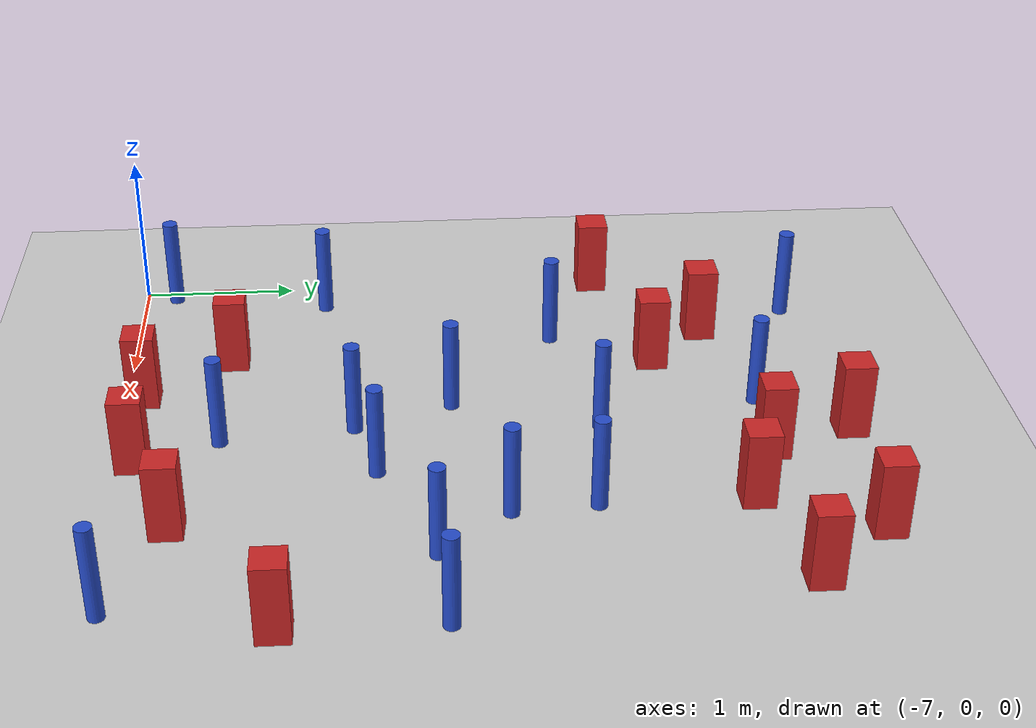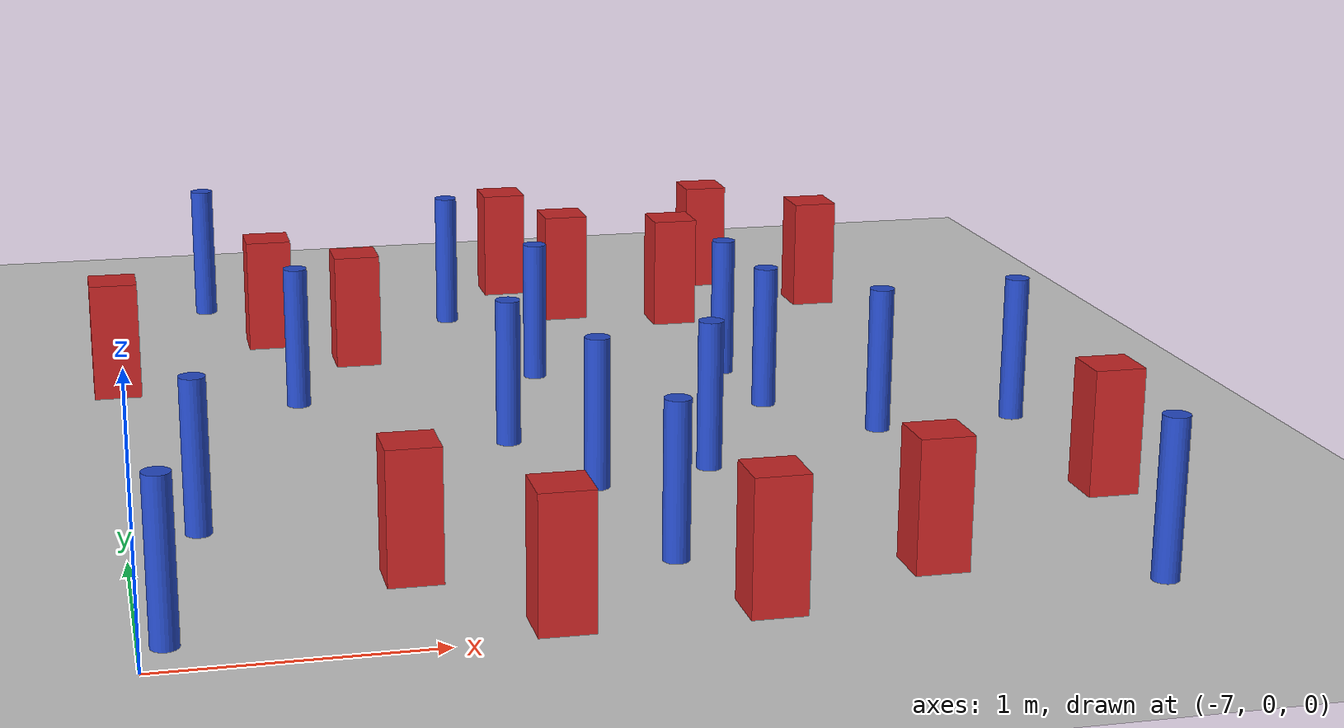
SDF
<sdf version="1.6">
 <world name="default">
  <model name="ground_plane">
   <static>1</static>
   <link name="link">
    <collision name="collision">
     <geometry><plane><normal>0 0 1</normal><size>100 100</size></plane></geometry>
     <surface><friction><ode><mu>100</mu><mu2>50</mu2></ode></friction></surface>
    </collision>
    <visual name="visual">
     <cast_shadows>0</cast_shadows>
     <geometry><plane><normal>0 0 1</normal><size>100 100</size></plane></geometry>
     <material>
      <ambient>1.0 1.0 1.0 1.0</ambient>
      <diffuse>0.8 0.8 0.8 1.0</diffuse>
      <specular>0.01 0.01 0.01 1.000000</specular>
     </material>
    </visual>
   </link>
  </model>
  <model name="square_post_obstacle5">
   <static>true</static>
   <pose>-3.9854556067 4.46820223153 -6.11067671241e-07 -5.50515727128e-06 -8.79689657224e-07 2.37013304536e-05</pose>
   <link name="link">
    <pose>0 0 0.25 0 -0 0</pose>
    <inertial>
     <mass>100</mass>
     <inertia>
      <ixx>0.166667</ixx>
      <ixy>0</ixy>
      <ixz>0</ixz>
      <iyy>0.166667</iyy>
      <iyz>0</iyz>
      <izz>0.166667</izz>
     </inertia>
    </inertial>
    <collision name="collision"><geometry><box><size>.2 .2 .5</size></box></geometry></collision>
    <visual name="visual">
     <geometry><box><size>.2 .2 .5</size></box></geometry>
     <material>
      <script><name>Gazebo/Red</name><uri>file://media/materials/scripts/gazebo.material</uri></script>
     </material>
    </visual>
   </link>
  </model>
  <model name="square_post_obstacle21">
   <static>true</static>
   <pose>-4.89767449202 0.111727149782 -6.11067671241e-07 -5.50515727128e-06 -8.79689657224e-07 2.37013304536e-05</pose>
   <link name="link">
    <pose>0 0 0.25 0 -0 0</pose>
    <inertial>
     <mass>100</mass>
     <inertia>
      <ixx>0.166667</ixx>
      <ixy>0</ixy>
      <ixz>0</ixz>
      <iyy>0.166667</iyy>
      <iyz>0</iyz>
      <izz>0.166667</izz>
     </inertia>
    </inertial>
    <collision name="collision"><geometry><box><size>.2 .2 .5</size></box></geometry></collision>
    <visual name="visual">
     <geometry><box><size>.2 .2 .5</size></box></geometry>
     <material>
      <script><name>Gazebo/Red</name><uri>file://media/materials/scripts/gazebo.material</uri></script>
     </material>
    </visual>
   </link>
  </model>
  <model name="square_post_obstacle25">
   <static>true</static>
   <pose>-6.24185374279 3.75734266402 -6.11067671241e-07 -5.50515727128e-06 -8.79689657224e-07 2.37013304536e-05</pose>
   <link name="link">
    <pose>0 0 0.25 0 -0 0</pose>
    <inertial>
     <mass>100</mass>
     <inertia>
      <ixx>0.166667</ixx>
      <ixy>0</ixy>
      <ixz>0</ixz>
      <iyy>0.166667</iyy>
      <iyz>0</iyz>
      <izz>0.166667</izz>
     </inertia>
    </inertial>
    <collision name="collision"><geometry><box><size>.2 .2 .5</size></box></geometry></collision>
    <visual name="visual">
     <geometry><box><size>.2 .2 .5</size></box></geometry>
     <material>
      <script><name>Gazebo/Red</name><uri>file://media/materials/scripts/gazebo.material</uri></script>
     </material>
    </visual>
   </link>
  </model>
  <model name="pole_obstacle61">
   <static>true</static>
   <pose>-5.20028227913 1.44340238059 -9.47619616065e-06 5.49618799738e-07 2.36310414071e-07 -1.55090534796e-07</pose>
   <link name="link">
    <pose>0 0 0.3 0 -0 0</pose>
    <inertial>
     <mass>1</mass>
     <inertia><ixx>0.145833</ixx><ixy>0</ixy><ixz>0</ixz><iyy>0.145833</iyy><iyz>0</iyz><izz>0.125</izz></inertia>
    </inertial>
    <collision name="collision">
     <geometry><cylinder><radius>0.05</radius><length>.6</length></cylinder></geometry>
    </collision>
    <visual name="visual">
     <geometry><cylinder><radius>0.05</radius><length>.6</length></cylinder></geometry>
     <material>
      <script><name>Gazebo/Blue</name><uri>file://media/materials/scripts/gazebo.material</uri></script>
     </material>
    </visual>
   </link>
  </model>
  <model name="pole_obstacle67">
   <static>true</static>
   <pose>-6.21090369616 2.75168642242 -9.47619616065e-06 5.49618799738e-07 2.36310414051e-07 -1.55090534805e-07</pose>
   <link name="link">
    <pose>0 0 0.3 0 -0 0</pose>
    <inertial>
     <mass>1</mass>
     <inertia><ixx>0.145833</ixx><ixy>0</ixy><ixz>0</ixz><iyy>0.145833</iyy><iyz>0</iyz><izz>0.125</izz></inertia>
    </inertial>
    <collision name="collision">
     <geometry><cylinder><radius>0.05</radius><length>.6</length></cylinder></geometry>
    </collision>
    <visual name="visual">
     <geometry><cylinder><radius>0.05</radius><length>.6</length></cylinder></geometry>
     <material>
      <script><name>Gazebo/Blue</name><uri>file://media/materials/scripts/gazebo.material</uri></script>
     </material>
    </visual>
   </link>
  </model>
  <model name="square_post_obstacle68">
   <static>true</static>
   <pose>-5.88368267943 3.38501373455 -6.11067671241e-07 -5.50515727128e-06 -8.79689657224e-07 2.37013304536e-05</pose>
   <link name="link">
    <pose>0 0 0.25 0 -0 0</pose>
    <inertial>
     <mass>100</mass>
     <inertia>
      <ixx>0.166667</ixx>
      <ixy>0</ixy>
      <ixz>0</ixz>
      <iyy>0.166667</iyy>
      <iyz>0</iyz>
      <izz>0.166667</izz>
     </inertia>
    </inertial>
    <collision name="collision"><geometry><box><size>.2 .2 .5</size></box></geometry></collision>
    <visual name="visual">
     <geometry><box><size>.2 .2 .5</size></box></geometry>
     <material>
      <script><name>Gazebo/Red</name><uri>file://media/materials/scripts/gazebo.material</uri></script>
     </material>
    </visual>
   </link>
  </model>
  <model name="pole_obstacle89">
   <static>true</static>
   <pose>-3.49032137935 0.0715964662466 -9.47619616065e-06 5.49618799737e-07 2.36310414028e-07 -1.55090534822e-07</pose>
   <link name="link">
    <pose>0 0 0.3 0 -0 0</pose>
    <inertial>
     <mass>1</mass>
     <inertia><ixx>0.145833</ixx><ixy>0</ixy><ixz>0</ixz><iyy>0.145833</iyy><iyz>0</iyz><izz>0.125</izz></inertia>
    </inertial>
    <collision name="collision">
     <geometry><cylinder><radius>0.05</radius><length>.6</length></cylinder></geometry>
    </collision>
    <visual name="visual">
     <geometry><cylinder><radius>0.05</radius><length>.6</length></cylinder></geometry>
     <material>
      <script><name>Gazebo/Blue</name><uri>file://media/materials/scripts/gazebo.material</uri></script>
     </material>
    </visual>
   </link>
  </model>
  <model name="square_post_obstacle86">
   <static>true</static>
   <pose>-6.96056548195 3.10820030166 -6.11067671241e-07 -5.50515727128e-06 -8.79689657224e-07 2.37013304536e-05</pose>
   <link name="link">
    <pose>0 0 0.25 0 -0 0</pose>
    <inertial>
     <mass>100</mass>
     <inertia>
      <ixx>0.166667</ixx>
      <ixy>0</ixy>
      <ixz>0</ixz>
      <iyy>0.166667</iyy>
      <iyz>0</iyz>
      <izz>0.166667</izz>
     </inertia>
    </inertial>
    <collision name="collision"><geometry><box><size>.2 .2 .5</size></box></geometry></collision>
    <visual name="visual">
     <geometry><box><size>.2 .2 .5</size></box></geometry>
     <material>
      <script><name>Gazebo/Red</name><uri>file://media/materials/scripts/gazebo.material</uri></script>
     </material>
    </visual>
   </link>
  </model>
  <model name="pole_obstacle97">
   <static>true</static>
   <pose>-6.73394681827 1.24381692508 -9.47619616065e-06 5.49618799738e-07 2.36310414071e-07 -1.55090534796e-07</pose>
   <link name="link">
    <pose>0 0 0.3 0 -0 0</pose>
    <inertial>
     <mass>1</mass>
     <inertia><ixx>0.145833</ixx><ixy>0</ixy><ixz>0</ixz><iyy>0.145833</iyy><iyz>0</iyz><izz>0.125</izz></inertia>
    </inertial>
    <collision name="collision">
     <geometry><cylinder><radius>0.05</radius><length>.6</length></cylinder></geometry>
    </collision>
    <visual name="visual">
     <geometry><cylinder><radius>0.05</radius><length>.6</length></cylinder></geometry>
     <material>
      <script><name>Gazebo/Blue</name><uri>file://media/materials/scripts/gazebo.material</uri></script>
     </material>
    </visual>
   </link>
  </model>
  <model name="square_post_obstacle92">
   <static>true</static>
   <pose>-3.55744458222 3.99997113632 -6.11067671241e-07 -5.50515727128e-06 -8.79689657224e-07 2.37013304536e-05</pose>
   <link name="link">
    <pose>0 0 0.25 0 -0 0</pose>
    <inertial>
     <mass>100</mass>
     <inertia>
      <ixx>0.166667</ixx>
      <ixy>0</ixy>
      <ixz>0</ixz>
      <iyy>0.166667</iyy>
      <iyz>0</iyz>
      <izz>0.166667</izz>
     </inertia>
    </inertial>
    <collision name="collision"><geometry><box><size>.2 .2 .5</size></box></geometry></collision>
    <visual name="visual">
     <geometry><box><size>.2 .2 .5</size></box></geometry>
     <material>
      <script><name>Gazebo/Red</name><uri>file://media/materials/scripts/gazebo.material</uri></script>
     </material>
    </visual>
   </link>
  </model>
  <model name="pole_obstacle101">
   <static>true</static>
   <pose>-5.4318687389 2.05385874134 -9.47619616065e-06 5.49618799738e-07 2.36310414051e-07 -1.55090534805e-07</pose>
   <link name="link">
    <pose>0 0 0.3 0 -0 0</pose>
    <inertial>
     <mass>1</mass>
     <inertia><ixx>0.145833</ixx><ixy>0</ixy><ixz>0</ixz><iyy>0.145833</iyy><iyz>0</iyz><izz>0.125</izz></inertia>
    </inertial>
    <collision name="collision">
     <geometry><cylinder><radius>0.05</radius><length>.6</length></cylinder></geometry>
    </collision>
    <visual name="visual">
     <geometry><cylinder><radius>0.05</radius><length>.6</length></cylinder></geometry>
     <material>
      <script><name>Gazebo/Blue</name><uri>file://media/materials/scripts/gazebo.material</uri></script>
     </material>
    </visual>
   </link>
  </model>
  <model name="square_post_obstacle94">
   <static>true</static>
   <pose>-3.30065545411 1.02063417165 -6.11067671241e-07 -5.50515727128e-06 -8.79689657224e-07 2.37013304536e-05</pose>
   <link name="link">
    <pose>0 0 0.25 0 -0 0</pose>
    <inertial>
     <mass>100</mass>
     <inertia>
      <ixx>0.166667</ixx>
      <ixy>0</ixy>
      <ixz>0</ixz>
      <iyy>0.166667</iyy>
      <iyz>0</iyz>
      <izz>0.166667</izz>
     </inertia>
    </inertial>
    <collision name="collision"><geometry><box><size>.2 .2 .5</size></box></geometry></collision>
    <visual name="visual">
     <geometry><box><size>.2 .2 .5</size></box></geometry>
     <material>
      <script><name>Gazebo/Red</name><uri>file://media/materials/scripts/gazebo.material</uri></script>
     </material>
    </visual>
   </link>
  </model>
  <model name="square_post_obstacle102">
   <static>true</static>
   <pose>-6.03837485008 0.652645354887 -6.11067671241e-07 -5.50515727128e-06 -8.79689657224e-07 2.37013304536e-05</pose>
   <link name="link">
    <pose>0 0 0.25 0 -0 0</pose>
    <inertial>
     <mass>100</mass>
     <inertia>
      <ixx>0.166667</ixx>
      <ixy>0</ixy>
      <ixz>0</ixz>
      <iyy>0.166667</iyy>
      <iyz>0</iyz>
      <izz>0.166667</izz>
     </inertia>
    </inertial>
    <collision name="collision"><geometry><box><size>.2 .2 .5</size></box></geometry></collision>
    <visual name="visual">
     <geometry><box><size>.2 .2 .5</size></box></geometry>
     <material>
      <script><name>Gazebo/Red</name><uri>file://media/materials/scripts/gazebo.material</uri></script>
     </material>
    </visual>
   </link>
  </model>
  <model name="pole_obstacle109">
   <static>true</static>
   <pose>-5.37035070303 3.97853645953 -9.47619616065e-06 5.49618799737e-07 2.36310414054e-07 -1.55090534804e-07</pose>
   <link name="link">
    <pose>0 0 0.3 0 -0 0</pose>
    <inertial>
     <mass>1</mass>
     <inertia><ixx>0.145833</ixx><ixy>0</ixy><ixz>0</ixz><iyy>0.145833</iyy><iyz>0</iyz><izz>0.125</izz></inertia>
    </inertial>
    <collision name="collision">
     <geometry><cylinder><radius>0.05</radius><length>.6</length></cylinder></geometry>
    </collision>
    <visual name="visual">
     <geometry><cylinder><radius>0.05</radius><length>.6</length></cylinder></geometry>
     <material>
      <script><name>Gazebo/Blue</name><uri>file://media/materials/scripts/gazebo.material</uri></script>
     </material>
    </visual>
   </link>
  </model>
  <model name="square_post_obstacle105">
   <static>true</static>
   <pose>-4.22629305797 0.378609148374 -6.11067671241e-07 -5.50515727128e-06 -8.79689657224e-07 2.37013304536e-05</pose>
   <link name="link">
    <pose>0 0 0.25 0 -0 0</pose>
    <inertial>
     <mass>100</mass>
     <inertia>
      <ixx>0.166667</ixx>
      <ixy>0</ixy>
      <ixz>0</ixz>
      <iyy>0.166667</iyy>
      <iyz>0</iyz>
      <izz>0.166667</izz>
     </inertia>
    </inertial>
    <collision name="collision"><geometry><box><size>.2 .2 .5</size></box></geometry></collision>
    <visual name="visual">
     <geometry><box><size>.2 .2 .5</size></box></geometry>
     <material>
      <script><name>Gazebo/Red</name><uri>file://media/materials/scripts/gazebo.material</uri></script>
     </material>
    </visual>
   </link>
  </model>
  <model name="square_post_obstacle122">
   <static>true</static>
   <pose>-4.31789929335 3.78424721537 -6.11067671241e-07 -5.50515727128e-06 -8.79689657224e-07 2.37013304536e-05</pose>
   <link name="link">
    <pose>0 0 0.25 0 -0 0</pose>
    <inertial>
     <mass>100</mass>
     <inertia>
      <ixx>0.166667</ixx>
      <ixy>0</ixy>
      <ixz>0</ixz>
      <iyy>0.166667</iyy>
      <iyz>0</iyz>
      <izz>0.166667</izz>
     </inertia>
    </inertial>
    <collision name="collision"><geometry><box><size>.2 .2 .5</size></box></geometry></collision>
    <visual name="visual">
     <geometry><box><size>.2 .2 .5</size></box></geometry>
     <material>
      <script><name>Gazebo/Red</name><uri>file://media/materials/scripts/gazebo.material</uri></script>
     </material>
    </visual>
   </link>
  </model>
  <model name="pole_obstacle127">
   <static>true</static>
   <pose>-5.14111896402 2.9665598119 -9.47619616065e-06 5.49618799738e-07 2.36310414051e-07 -1.55090534805e-07</pose>
   <link name="link">
    <pose>0 0 0.3 0 -0 0</pose>
    <inertial>
     <mass>1</mass>
     <inertia><ixx>0.145833</ixx><ixy>0</ixy><ixz>0</ixz><iyy>0.145833</iyy><iyz>0</iyz><izz>0.125</izz></inertia>
    </inertial>
    <collision name="collision">
     <geometry><cylinder><radius>0.05</radius><length>.6</length></cylinder></geometry>
    </collision>
    <visual name="visual">
     <geometry><cylinder><radius>0.05</radius><length>.6</length></cylinder></geometry>
     <material>
      <script><name>Gazebo/Blue</name><uri>file://media/materials/scripts/gazebo.material</uri></script>
     </material>
    </visual>
   </link>
  </model>
  <model name="pole_obstacle128">
   <static>true</static>
   <pose>-4.31197705896 2.86059861686 -9.47619616065e-06 5.49618799738e-07 2.36310414051e-07 -1.55090534805e-07</pose>
   <link name="link">
    <pose>0 0 0.3 0 -0 0</pose>
    <inertial>
     <mass>1</mass>
     <inertia><ixx>0.145833</ixx><ixy>0</ixy><ixz>0</ixz><iyy>0.145833</iyy><iyz>0</iyz><izz>0.125</izz></inertia>
    </inertial>
    <collision name="collision">
     <geometry><cylinder><radius>0.05</radius><length>.6</length></cylinder></geometry>
    </collision>
    <visual name="visual">
     <geometry><cylinder><radius>0.05</radius><length>.6</length></cylinder></geometry>
     <material>
      <script><name>Gazebo/Blue</name><uri>file://media/materials/scripts/gazebo.material</uri></script>
     </material>
    </visual>
   </link>
  </model>
  <model name="pole_obstacle129">
   <static>true</static>
   <pose>-5.09949745526 0.617684358546 -9.47619616065e-06 5.49618799737e-07 2.36310414061e-07 -1.550905348e-07</pose>
   <link name="link">
    <pose>0 0 0.3 0 -0 0</pose>
    <inertial>
     <mass>1</mass>
     <inertia><ixx>0.145833</ixx><ixy>0</ixy><ixz>0</ixz><iyy>0.145833</iyy><iyz>0</iyz><izz>0.125</izz></inertia>
    </inertial>
    <collision name="collision">
     <geometry><cylinder><radius>0.05</radius><length>.6</length></cylinder></geometry>
    </collision>
    <visual name="visual">
     <geometry><cylinder><radius>0.05</radius><length>.6</length></cylinder></geometry>
     <material>
      <script><name>Gazebo/Blue</name><uri>file://media/materials/scripts/gazebo.material</uri></script>
     </material>
    </visual>
   </link>
  </model>
  <model name="pole_obstacle148">
   <static>true</static>
   <pose>-6.91130225763 0.203133801507 -9.47619616065e-06 5.49618799737e-07 2.36310414071e-07 -1.55090534796e-07</pose>
   <link name="link">
    <pose>0 0 0.3 0 -0 0</pose>
    <inertial>
     <mass>1</mass>
     <inertia><ixx>0.145833</ixx><ixy>0</ixy><ixz>0</ixz><iyy>0.145833</iyy><iyz>0</iyz><izz>0.125</izz></inertia>
    </inertial>
    <collision name="collision">
     <geometry><cylinder><radius>0.05</radius><length>.6</length></cylinder></geometry>
    </collision>
    <visual name="visual">
     <geometry><cylinder><radius>0.05</radius><length>.6</length></cylinder></geometry>
     <material>
      <script><name>Gazebo/Blue</name><uri>file://media/materials/scripts/gazebo.material</uri></script>
     </material>
    </visual>
   </link>
  </model>
  <model name="pole_obstacle156">
   <static>true</static>
   <pose>-4.26945105646 2.34597910854 -9.47619616065e-06 5.49618799738e-07 2.36310414051e-07 -1.55090534805e-07</pose>
   <link name="link">
    <pose>0 0 0.3 0 -0 0</pose>
    <inertial>
     <mass>1</mass>
     <inertia><ixx>0.145833</ixx><ixy>0</ixy><ixz>0</ixz><iyy>0.145833</iyy><iyz>0</iyz><izz>0.125</izz></inertia>
    </inertial>
    <collision name="collision">
     <geometry><cylinder><radius>0.05</radius><length>.6</length></cylinder></geometry>
    </collision>
    <visual name="visual">
     <geometry><cylinder><radius>0.05</radius><length>.6</length></cylinder></geometry>
     <material>
      <script><name>Gazebo/Blue</name><uri>file://media/materials/scripts/gazebo.material</uri></script>
     </material>
    </visual>
   </link>
  </model>
  <model name="square_post_obstacle163">
   <static>true</static>
   <pose>-5.00848437876 4.50561812445 -6.11067671241e-07 -5.50515727128e-06 -8.79689657224e-07 2.37013304536e-05</pose>
   <link name="link">
    <pose>0 0 0.25 0 -0 0</pose>
    <inertial>
     <mass>100</mass>
     <inertia>
      <ixx>0.166667</ixx>
      <ixy>0</ixy>
      <ixz>0</ixz>
      <iyy>0.166667</iyy>
      <iyz>0</iyz>
      <izz>0.166667</izz>
     </inertia>
    </inertial>
    <collision name="collision"><geometry><box><size>.2 .2 .5</size></box></geometry></collision>
    <visual name="visual">
     <geometry><box><size>.2 .2 .5</size></box></geometry>
     <material>
      <script><name>Gazebo/Red</name><uri>file://media/materials/scripts/gazebo.material</uri></script>
     </material>
    </visual>
   </link>
  </model>
  <model name="square_post_obstacle183">
   <static>true</static>
   <pose>-5.61983273582 0.111754612396 -6.11067671241e-07 -5.50515727128e-06 -8.79689657224e-07 2.37013304536e-05</pose>
   <link name="link">
    <pose>0 0 0.25 0 -0 0</pose>
    <inertial>
     <mass>100</mass>
     <inertia>
      <ixx>0.166667</ixx>
      <ixy>0</ixy>
      <ixz>0</ixz>
      <iyy>0.166667</iyy>
      <iyz>0</iyz>
      <izz>0.166667</izz>
     </inertia>
    </inertial>
    <collision name="collision"><geometry><box><size>.2 .2 .5</size></box></geometry></collision>
    <visual name="visual">
     <geometry><box><size>.2 .2 .5</size></box></geometry>
     <material>
      <script><name>Gazebo/Red</name><uri>file://media/materials/scripts/gazebo.material</uri></script>
     </material>
    </visual>
   </link>
  </model>
  <model name="pole_obstacle187">
   <static>true</static>
   <pose>-4.71827405342 1.57680718083 -9.47619616065e-06 5.49618799738e-07 2.36310414071e-07 -1.55090534796e-07</pose>
   <link name="link">
    <pose>0 0 0.3 0 -0 0</pose>
    <inertial>
     <mass>1</mass>
     <inertia><ixx>0.145833</ixx><ixy>0</ixy><ixz>0</ixz><iyy>0.145833</iyy><iyz>0</iyz><izz>0.125</izz></inertia>
    </inertial>
    <collision name="collision">
     <geometry><cylinder><radius>0.05</radius><length>.6</length></cylinder></geometry>
    </collision>
    <visual name="visual">
     <geometry><cylinder><radius>0.05</radius><length>.6</length></cylinder></geometry>
     <material>
      <script><name>Gazebo/Blue</name><uri>file://media/materials/scripts/gazebo.material</uri></script>
     </material>
    </visual>
   </link>
  </model>
  <model name="square_post_obstacle193">
   <static>true</static>
   <pose>-4.80711522259 3.9769359492 -6.11067671241e-07 -5.50515727128e-06 -8.79689657224e-07 2.37013304536e-05</pose>
   <link name="link">
    <pose>0 0 0.25 0 -0 0</pose>
    <inertial>
     <mass>100</mass>
     <inertia>
      <ixx>0.166667</ixx>
      <ixy>0</ixy>
      <ixz>0</ixz>
      <iyy>0.166667</iyy>
      <iyz>0</iyz>
      <izz>0.166667</izz>
     </inertia>
    </inertial>
    <collision name="collision"><geometry><box><size>.2 .2 .5</size></box></geometry></collision>
    <visual name="visual">
     <geometry><box><size>.2 .2 .5</size></box></geometry>
     <material>
      <script><name>Gazebo/Red</name><uri>file://media/materials/scripts/gazebo.material</uri></script>
     </material>
    </visual>
   </link>
  </model>
  <model name="pole_obstacle189">
   <static>true</static>
   <pose>-3.90697595322 1.90889621981 -9.47619616065e-06 5.49618799737e-07 2.36310414072e-07 -1.55090534793e-07</pose>
   <link name="link">
    <pose>0 0 0.3 0 -0 0</pose>
    <inertial>
     <mass>1</mass>
     <inertia><ixx>0.145833</ixx><ixy>0</ixy><ixz>0</ixz><iyy>0.145833</iyy><iyz>0</iyz><izz>0.125</izz></inertia>
    </inertial>
    <collision name="collision">
     <geometry><cylinder><radius>0.05</radius><length>.6</length></cylinder></geometry>
    </collision>
    <visual name="visual">
     <geometry><cylinder><radius>0.05</radius><length>.6</length></cylinder></geometry>
     <material>
      <script><name>Gazebo/Blue</name><uri>file://media/materials/scripts/gazebo.material</uri></script>
     </material>
    </visual>
   </link>
  </model>
  <model name="pole_obstacle201">
   <static>true</static>
   <pose>-6.49161567323 4.37797875976 -9.47619616065e-06 5.49618799737e-07 2.36310414037e-07 -1.55090534814e-07</pose>
   <link name="link">
    <pose>0 0 0.3 0 -0 0</pose>
    <inertial>
     <mass>1</mass>
     <inertia><ixx>0.145833</ixx><ixy>0</ixy><ixz>0</ixz><iyy>0.145833</iyy><iyz>0</iyz><izz>0.125</izz></inertia>
    </inertial>
    <collision name="collision">
     <geometry><cylinder><radius>0.05</radius><length>.6</length></cylinder></geometry>
    </collision>
    <visual name="visual">
     <geometry><cylinder><radius>0.05</radius><length>.6</length></cylinder></geometry>
     <material>
      <script><name>Gazebo/Blue</name><uri>file://media/materials/scripts/gazebo.material</uri></script>
     </material>
    </visual>
   </link>
  </model>
  <model name="pole_obstacle215">
   <static>true</static>
   <pose>-3.30225782892 1.95619986276 -9.4761961606e-06 5.49618799729e-07 2.36310414002e-07 -1.55090534824e-07</pose>
   <link name="link">
    <pose>0 0 0.3 0 -0 0</pose>
    <inertial>
     <mass>1</mass>
     <inertia><ixx>0.145833</ixx><ixy>0</ixy><ixz>0</ixz><iyy>0.145833</iyy><iyz>0</iyz><izz>0.125</izz></inertia>
    </inertial>
    <collision name="collision">
     <geometry><cylinder><radius>0.05</radius><length>.6</length></cylinder></geometry>
    </collision>
    <visual name="visual">
     <geometry><cylinder><radius>0.05</radius><length>.6</length></cylinder></geometry>
     <material>
      <script><name>Gazebo/Blue</name><uri>file://media/materials/scripts/gazebo.material</uri></script>
     </material>
    </visual>
   </link>
  </model>
 </world>
</sdf>
